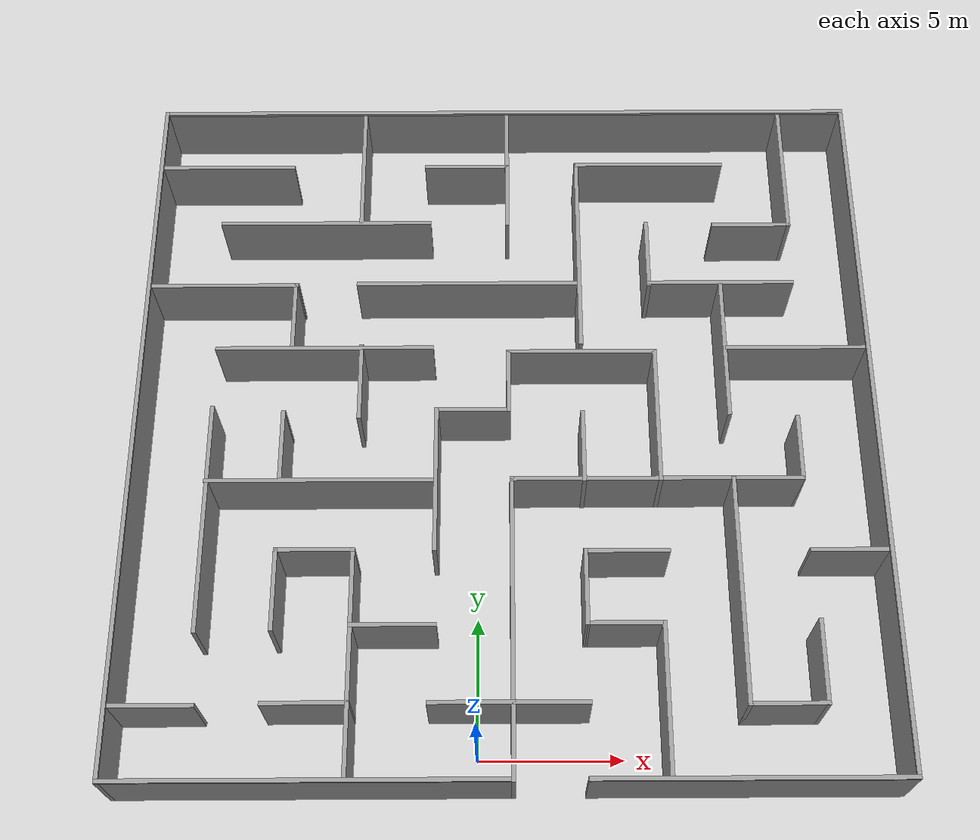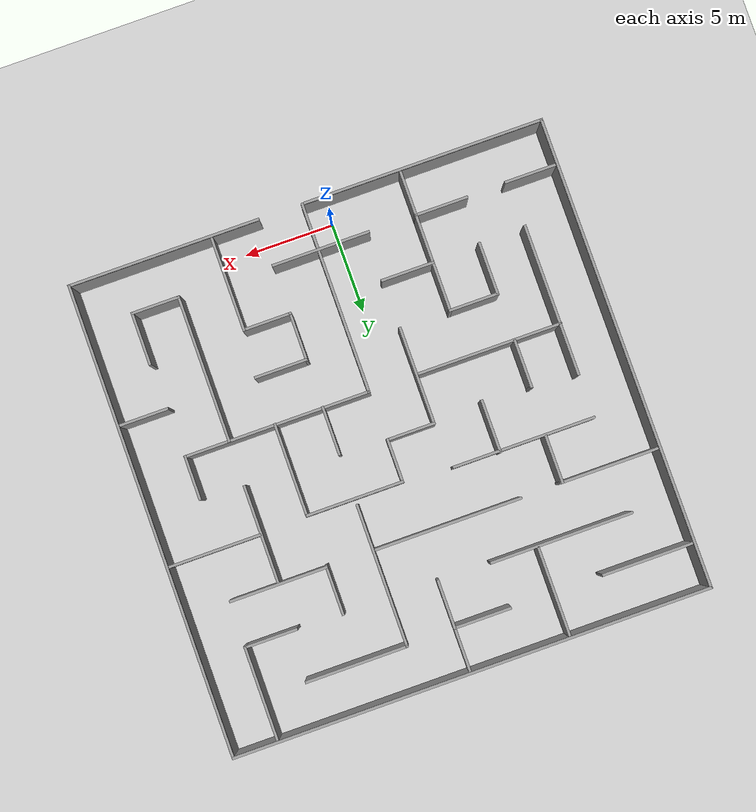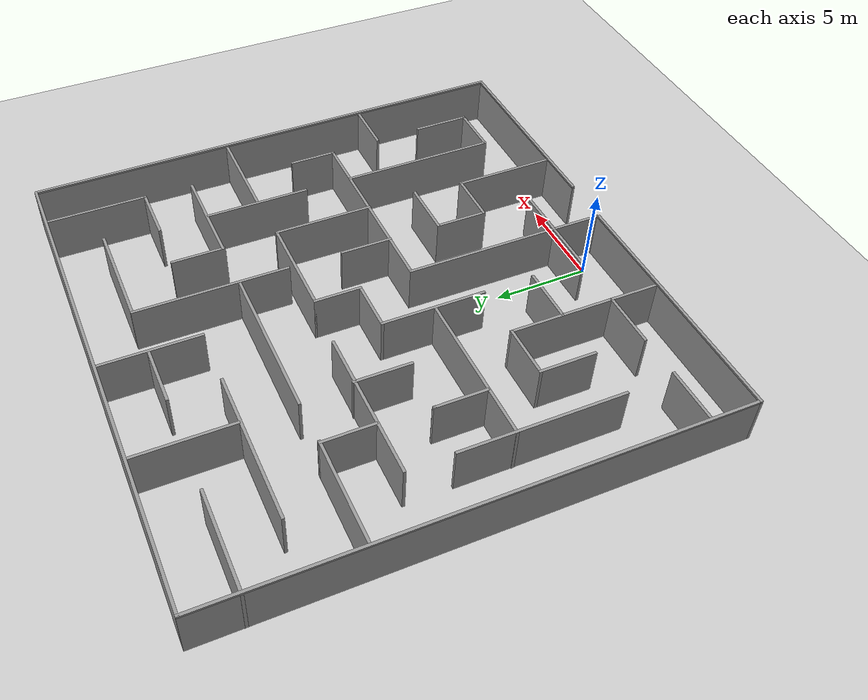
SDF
<?xml version="1.0" ?>
<sdf version="1.4">
  <world name="empty_world">
    <include>
      <uri>model://ground_plane</uri>
    </include>
    <include>
      <uri>model://sun</uri>
    </include>
    <include>
      <uri>model://maze</uri>
        <pose>1.0 12.0 0 0 0 0</pose>
    </include>

    <!-- Only require one ROS interface plugin per world, as any other plugin can connect a Gazebo
        topic to a ROS topic (or vise versa). 35.5 9-->
    <plugin name="ros_interface_plugin" filename="librotors_gazebo_ros_interface_plugin.so"></plugin>

    <spherical_coordinates>
      <surface_model>EARTH_WGS84</surface_model>
      <latitude_deg>47.3667</latitude_deg>
      <longitude_deg>8.5500</longitude_deg>
      <elevation>500.0</elevation>
      <heading_deg>0</heading_deg>
    </spherical_coordinates>
    <physics type='ode'>
      <ode>
        <solver>
          <type>quick</type>
          <iters>1000</iters>
          <sor>1.3</sor>
        </solver>
        <constraints>
          <cfm>0</cfm>
          <erp>0.2</erp>
          <contact_max_correcting_vel>100</contact_max_correcting_vel>
          <contact_surface_layer>0.001</contact_surface_layer>
        </constraints>
      </ode>
      <max_step_size>0.01</max_step_size>
      <real_time_factor>1</real_time_factor>
      <real_time_update_rate>100</real_time_update_rate>
      <gravity>0 0 -9.8</gravity>
    </physics>
  </world>
</sdf>

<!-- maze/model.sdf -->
<sdf version='1.6'>
  <model name='maze'>
    <pose frame=''>-0.052753 -0.039413 0 0 -0 0</pose>

    <link name='Wall_0'>
      <collision name='Wall_0_Collision'>
        <geometry>
          <box>
            <size>13.5 0.15 2.5</size>
          </box>
        </geometry>
        <pose frame=''>0 0 1.25 0 -0 0</pose>
      </collision>
      <visual name='Wall_0_Visual'>
        <pose frame=''>0 0 1.25 0 -0 0</pose>
        <geometry>
          <box>
            <size>13.5 0.15 2.5</size>
          </box>
        </geometry>
        <material>
          <script>
            <uri>file://media/materials/scripts/gazebo.material</uri>
            <name>Gazebo/Grey</name>
          </script>
          <ambient>1 1 1 1</ambient>
        </material>
        <meta>
          <layer>0</layer>
        </meta>
      </visual>
      <pose frame=''>-6.62044 -13.175 0 0 -0 3.14159</pose>
    </link>
    <link name='Wall_1'>
      <collision name='Wall_1_Collision'>
        <geometry>
          <box>
            <size>26.5 0.15 2.5</size>
          </box>
        </geometry>
        <pose frame=''>0 0 1.25 0 -0 0</pose>
      </collision>
      <visual name='Wall_1_Visual'>
        <pose frame=''>0 0 1.25 0 -0 0</pose>
        <geometry>
          <box>
            <size>26.5 0.15 2.5</size>
          </box>
        </geometry>
        <material>
          <script>
            <uri>file://media/materials/scripts/gazebo.material</uri>
            <name>Gazebo/Grey</name>
          </script>
          <ambient>1 1 1 1</ambient>
        </material>
        <meta>
          <layer>0</layer>
        </meta>
      </visual>
      <pose frame=''>-13.2954 0 0 0 -0 1.5708</pose>
    </link>
    <link name='Wall_10'>
      <collision name='Wall_10_Collision'>
        <geometry>
          <box>
            <size>10.75 0.15 0.1</size>
          </box>
        </geometry>
        <pose frame=''>0 0 0.05 0 -0 0</pose>
      </collision>
      <visual name='Wall_10_Visual'>
        <pose frame=''>0 0 0.05 0 -0 0</pose>
        <geometry>
          <box>
            <size>10.75 0.15 0.1</size>
          </box>
        </geometry>
        <material>
          <script>
            <uri>file://media/materials/scripts/gazebo.material</uri>
            <name>Gazebo/Grey</name>
          </script>
          <ambient>1 1 1 1</ambient>
        </material>
        <meta>
          <layer>1</layer>
        </meta>
      </visual>
      <pose frame=''>8.00475 -13.1746 2.5 0 -0 3.14159</pose>
    </link>
    <link name='Wall_11'>
      <collision name='Wall_11_Collision'>
        <geometry>
          <box>
            <size>5.43559 0.15 2.5</size>
          </box>
        </geometry>
        <pose frame=''>0 0 1.25 0 -0 0</pose>
      </collision>
      <visual name='Wall_11_Visual'>
        <pose frame=''>0 0 1.25 0 -0 0</pose>
        <geometry>
          <box>
            <size>5.43559 0.15 2.5</size>
          </box>
        </geometry>
        <material>
          <script>
            <uri>file://media/materials/scripts/gazebo.material</uri>
            <name>Gazebo/Grey</name>
          </script>
          <ambient>1 1 1 1</ambient>
        </material>
        <meta>
          <layer>0</layer>
        </meta>
      </visual>
      <pose frame=''>5.34675 -10.5316 0 0 -0 1.5708</pose>
    </link>
    <link name='Wall_12'>
      <collision name='Wall_12_Collision'>
        <geometry>
          <box>
            <size>2.75 0.15 2.5</size>
          </box>
        </geometry>
        <pose frame=''>0 0 1.25 0 -0 0</pose>
      </collision>
      <visual name='Wall_12_Visual'>
        <pose frame=''>0 0 1.25 0 -0 0</pose>
        <geometry>
          <box>
            <size>2.75 0.15 2.5</size>
          </box>
        </geometry>
        <material>
          <script>
            <uri>file://media/materials/scripts/gazebo.material</uri>
            <name>Gazebo/Grey</name>
          </script>
          <ambient>1 1 1 1</ambient>
        </material>
        <meta>
          <layer>0</layer>
        </meta>
      </visual>
      <pose frame=''>4.04654 -7.88879 0 0 -0 -3.14143</pose>
    </link>
    <link name='Wall_13'>
      <collision name='Wall_13_Collision'>
        <geometry>
          <box>
            <size>2.75 0.15 2.5</size>
          </box>
        </geometry>
        <pose frame=''>0 0 1.25 0 -0 0</pose>
      </collision>
      <visual name='Wall_13_Visual'>
        <pose frame=''>0 0 1.25 0 -0 0</pose>
        <geometry>
          <box>
            <size>2.75 0.15 2.5</size>
          </box>
        </geometry>
        <material>
          <script>
            <uri>file://media/materials/scripts/gazebo.material</uri>
            <name>Gazebo/Grey</name>
          </script>
          <ambient>1 1 1 1</ambient>
        </material>
        <meta>
          <layer>0</layer>
        </meta>
      </visual>
      <pose frame=''>2.74634 -6.589 0 0 -0 1.5708</pose>
    </link>
    <link name='Wall_14'>
      <collision name='Wall_14_Collision'>
        <geometry>
          <box>
            <size>3 0.15 2.5</size>
          </box>
        </geometry>
        <pose frame=''>0 0 1.25 0 -0 0</pose>
      </collision>
      <visual name='Wall_14_Visual'>
        <pose frame=''>0 0 1.25 0 -0 0</pose>
        <geometry>
          <box>
            <size>3 0.15 2.5</size>
          </box>
        </geometry>
        <material>
          <script>
            <uri>file://media/materials/scripts/gazebo.material</uri>
            <name>Gazebo/Grey</name>
          </script>
          <ambient>1 1 1 1</ambient>
        </material>
        <meta>
          <layer>0</layer>
        </meta>
      </visual>
      <pose frame=''>4.17134 -5.289 0 0 -0 0</pose>
    </link>
    <link name='Wall_16'>
      <collision name='Wall_16_Collision'>
        <geometry>
          <box>
            <size>10.752 0.15 2.5</size>
          </box>
        </geometry>
        <pose frame=''>0 0 1.25 0 -0 0</pose>
      </collision>
      <visual name='Wall_16_Visual'>
        <pose frame=''>0 0 1.25 0 -0 0</pose>
        <geometry>
          <box>
            <size>10.752 0.15 2.5</size>
          </box>
        </geometry>
        <material>
          <script>
            <uri>file://media/materials/scripts/gazebo.material</uri>
            <name>Gazebo/Grey</name>
          </script>
          <ambient>1 1 1 1</ambient>
        </material>
        <meta>
          <layer>0</layer>
        </meta>
      </visual>
      <pose frame=''>0.206753 -7.87359 0 0 -0 1.5708</pose>
    </link>
    <link name='Wall_17'>
      <collision name='Wall_17_Collision'>
        <geometry>
          <box>
            <size>10.4392 0.15 2.5</size>
          </box>
        </geometry>
        <pose frame=''>0 0 1.25 0 -0 0</pose>
      </collision>
      <visual name='Wall_17_Visual'>
        <pose frame=''>0 0 1.25 0 -0 0</pose>
        <geometry>
          <box>
            <size>10.4392 0.15 2.5</size>
          </box>
        </geometry>
        <material>
          <script>
            <uri>file://media/materials/scripts/gazebo.material</uri>
            <name>Gazebo/Grey</name>
          </script>
          <ambient>1 1 1 1</ambient>
        </material>
        <meta>
          <layer>0</layer>
        </meta>
      </visual>
      <pose frame=''>5.35137 -2.57256 0 0 -0 4e-06</pose>
    </link>
    <link name='Wall_18'>
      <collision name='Wall_18_Collision'>
        <geometry>
          <box>
            <size>2.5 0.15 2.5</size>
          </box>
        </geometry>
        <pose frame=''>0 0 1.25 0 -0 0</pose>
      </collision>
      <visual name='Wall_18_Visual'>
        <pose frame=''>0 0 1.25 0 -0 0</pose>
        <geometry>
          <box>
            <size>2.5 0.15 2.5</size>
          </box>
        </geometry>
        <material>
          <script>
            <uri>file://media/materials/scripts/gazebo.material</uri>
            <name>Gazebo/Grey</name>
          </script>
          <ambient>1 1 1 1</ambient>
        </material>
        <meta>
          <layer>0</layer>
        </meta>
      </visual>
      <pose frame=''>10.496 -1.39754 0 0 -0 1.5708</pose>
    </link>
    <link name='Wall_2'>
      <collision name='Wall_2_Collision'>
        <geometry>
          <box>
            <size>26.75 0.15 2.5</size>
          </box>
        </geometry>
        <pose frame=''>0 0 1.25 0 -0 0</pose>
      </collision>
      <visual name='Wall_2_Visual'>
        <pose frame=''>0 0 1.25 0 -0 0</pose>
        <geometry>
          <box>
            <size>26.75 0.15 2.5</size>
          </box>
        </geometry>
        <material>
          <script>
            <uri>file://media/materials/scripts/gazebo.material</uri>
            <name>Gazebo/Grey</name>
          </script>
          <ambient>1 1 1 1</ambient>
        </material>
        <meta>
          <layer>0</layer>
        </meta>
      </visual>
      <pose frame=''>0.00456 13.175 0 0 -0 0</pose>
    </link>
    <link name='Wall_20'>
      <collision name='Wall_20_Collision'>
        <geometry>
          <box>
            <size>8.06105 0.15 2.5</size>
          </box>
        </geometry>
        <pose frame=''>0 0 1.25 0 -0 0</pose>
      </collision>
      <visual name='Wall_20_Visual'>
        <pose frame=''>0 0 1.25 0 -0 0</pose>
        <geometry>
          <box>
            <size>8.06105 0.15 2.5</size>
          </box>
        </geometry>
        <material>
          <script>
            <uri>file://media/materials/scripts/gazebo.material</uri>
            <name>Gazebo/Grey</name>
          </script>
          <ambient>1 1 1 1</ambient>
        </material>
        <meta>
          <layer>0</layer>
        </meta>
      </visual>
      <pose frame=''>-5.29916 -9.16111 0 0 -0 1.57082</pose>
    </link>
    <link name='Wall_21'>
      <collision name='Wall_21_Collision'>
        <geometry>
          <box>
            <size>2.82244 0.15 2.5</size>
          </box>
        </geometry>
        <pose frame=''>0 0 1.25 0 -0 0</pose>
      </collision>
      <visual name='Wall_21_Visual'>
        <pose frame=''>0 0 1.25 0 -0 0</pose>
        <geometry>
          <box>
            <size>2.82244 0.15 2.5</size>
          </box>
        </geometry>
        <material>
          <script>
            <uri>file://media/materials/scripts/gazebo.material</uri>
            <name>Gazebo/Grey</name>
          </script>
          <ambient>1 1 1 1</ambient>
        </material>
        <meta>
          <layer>0</layer>
        </meta>
      </visual>
      <pose frame=''>-6.63525 -5.20559 0 0 -0 3.14159</pose>
    </link>
    <link name='Wall_22'>
      <collision name='Wall_22_Collision'>
        <geometry>
          <box>
            <size>3 0.15 2.5</size>
          </box>
        </geometry>
        <pose frame=''>0 0 1.25 0 -0 0</pose>
      </collision>
      <visual name='Wall_22_Visual'>
        <pose frame=''>0 0 1.25 0 -0 0</pose>
        <geometry>
          <box>
            <size>3 0.15 2.5</size>
          </box>
        </geometry>
        <material>
          <script>
            <uri>file://media/materials/scripts/gazebo.material</uri>
            <name>Gazebo/Grey</name>
          </script>
          <ambient>1 1 1 1</ambient>
        </material>
        <meta>
          <layer>0</layer>
        </meta>
      </visual>
      <pose frame=''>-7.97125 -6.63059 0 0 -0 -1.5708</pose>
    </link>
    <link name='Wall_24'>
      <collision name='Wall_24_Collision'>
        <geometry>
          <box>
            <size>5.5 0.15 2.5</size>
          </box>
        </geometry>
        <pose frame=''>0 0 1.25 0 -0 0</pose>
      </collision>
      <visual name='Wall_24_Visual'>
        <pose frame=''>0 0 1.25 0 -0 0</pose>
        <geometry>
          <box>
            <size>5.5 0.15 2.5</size>
          </box>
        </geometry>
        <material>
          <script>
            <uri>file://media/materials/scripts/gazebo.material</uri>
            <name>Gazebo/Grey</name>
          </script>
          <ambient>1 1 1 1</ambient>
        </material>
        <meta>
          <layer>0</layer>
        </meta>
      </visual>
      <pose frame=''>0.067875 -10.6082 0 0 -0 0</pose>
    </link>
    <link name='Wall_27'>
      <collision name='Wall_27_Collision'>
        <geometry>
          <box>
            <size>8.25 0.15 2.5</size>
          </box>
        </geometry>
        <pose frame=''>0 0 1.25 0 -0 0</pose>
      </collision>
      <visual name='Wall_27_Visual'>
        <pose frame=''>0 0 1.25 0 -0 0</pose>
        <geometry>
          <box>
            <size>8.25 0.15 2.5</size>
          </box>
        </geometry>
        <material>
          <script>
            <uri>file://media/materials/scripts/gazebo.material</uri>
            <name>Gazebo/Grey</name>
          </script>
          <ambient>1 1 1 1</ambient>
        </material>
        <meta>
          <layer>0</layer>
        </meta>
      </visual>
      <pose frame=''>8.03828 -6.6436 0 0 -0 -1.5708</pose>
    </link>
    <link name='Wall_28'>
      <collision name='Wall_28_Collision'>
        <geometry>
          <box>
            <size>2.75 0.15 2.5</size>
          </box>
        </geometry>
        <pose frame=''>0 0 1.25 0 -0 0</pose>
      </collision>
      <visual name='Wall_28_Visual'>
        <pose frame=''>0 0 1.25 0 -0 0</pose>
        <geometry>
          <box>
            <size>2.75 0.15 2.5</size>
          </box>
        </geometry>
        <material>
          <script>
            <uri>file://media/materials/scripts/gazebo.material</uri>
            <name>Gazebo/Grey</name>
          </script>
          <ambient>1 1 1 1</ambient>
        </material>
        <meta>
          <layer>0</layer>
        </meta>
      </visual>
      <pose frame=''>9.33827 -10.6936 0 0 -0 0</pose>
    </link>
    <link name='Wall_29'>
      <collision name='Wall_29_Collision'>
        <geometry>
          <box>
            <size>3 0.15 2.5</size>
          </box>
        </geometry>
        <pose frame=''>0 0 1.25 0 -0 0</pose>
      </collision>
      <visual name='Wall_29_Visual'>
        <pose frame=''>0 0 1.25 0 -0 0</pose>
        <geometry>
          <box>
            <size>3 0.15 2.5</size>
          </box>
        </geometry>
        <material>
          <script>
            <uri>file://media/materials/scripts/gazebo.material</uri>
            <name>Gazebo/Grey</name>
          </script>
          <ambient>1 1 1 1</ambient>
        </material>
        <meta>
          <layer>0</layer>
        </meta>
      </visual>
      <pose frame=''>10.6383 -9.2686 0 0 -0 1.5708</pose>
    </link>
    <link name='Wall_3'>
      <collision name='Wall_3_Collision'>
        <geometry>
          <box>
            <size>26.5 0.15 2.5</size>
          </box>
        </geometry>
        <pose frame=''>0 0 1.25 0 -0 0</pose>
      </collision>
      <visual name='Wall_3_Visual'>
        <pose frame=''>0 0 1.25 0 -0 0</pose>
        <geometry>
          <box>
            <size>26.5 0.15 2.5</size>
          </box>
        </geometry>
        <material>
          <script>
            <uri>file://media/materials/scripts/gazebo.material</uri>
            <name>Gazebo/Grey</name>
          </script>
          <ambient>1 1 1 1</ambient>
        </material>
        <meta>
          <layer>0</layer>
        </meta>
      </visual>
      <pose frame=''>13.3046 0 0 0 -0 -1.5708</pose>
    </link>
    <link name='Wall_31'>
      <collision name='Wall_31_Collision'>
        <geometry>
          <box>
            <size>2.8826 0.15 2.5</size>
          </box>
        </geometry>
        <pose frame=''>0 0 1.25 0 -0 0</pose>
      </collision>
      <visual name='Wall_31_Visual'>
        <pose frame=''>0 0 1.25 0 -0 0</pose>
        <geometry>
          <box>
            <size>2.8826 0.15 2.5</size>
          </box>
        </geometry>
        <material>
          <script>
            <uri>file://media/materials/scripts/gazebo.material</uri>
            <name>Gazebo/Grey</name>
          </script>
          <ambient>1 1 1 1</ambient>
        </material>
        <meta>
          <layer>0</layer>
        </meta>
      </visual>
      <pose frame=''>11.9383 -5.28559 0 0 -0 3.14159</pose>
    </link>
    <link name='Wall_33'>
      <collision name='Wall_33_Collision'>
        <geometry>
          <box>
            <size>3 0.15 2.5</size>
          </box>
        </geometry>
        <pose frame=''>0 0 1.25 0 -0 0</pose>
      </collision>
      <visual name='Wall_33_Visual'>
        <pose frame=''>0 0 1.25 0 -0 0</pose>
        <geometry>
          <box>
            <size>3 0.15 2.5</size>
          </box>
        </geometry>
        <material>
          <script>
            <uri>file://media/materials/scripts/gazebo.material</uri>
            <name>Gazebo/Grey</name>
          </script>
          <ambient>1 1 1 1</ambient>
        </material>
        <meta>
          <layer>0</layer>
        </meta>
      </visual>
      <pose frame=''>-11.8275 -10.6694 0 0 -0 0</pose>
    </link>
    <link name='Wall_35'>
      <collision name='Wall_35_Collision'>
        <geometry>
          <box>
            <size>3 0.15 2.5</size>
          </box>
        </geometry>
        <pose frame=''>0 0 1.25 0 -0 0</pose>
      </collision>
      <visual name='Wall_35_Visual'>
        <pose frame=''>0 0 1.25 0 -0 0</pose>
        <geometry>
          <box>
            <size>3 0.15 2.5</size>
          </box>
        </geometry>
        <material>
          <script>
            <uri>file://media/materials/scripts/gazebo.material</uri>
            <name>Gazebo/Grey</name>
          </script>
          <ambient>1 1 1 1</ambient>
        </material>
        <meta>
          <layer>0</layer>
        </meta>
      </visual>
      <pose frame=''>-6.72407 -10.6082 0 0 -0 3.14159</pose>
    </link>
    <link name='Wall_37'>
      <collision name='Wall_37_Collision'>
        <geometry>
          <box>
            <size>2.75 0.15 2.5</size>
          </box>
        </geometry>
        <pose frame=''>0 0 1.25 0 -0 0</pose>
      </collision>
      <visual name='Wall_37_Visual'>
        <pose frame=''>0 0 1.25 0 -0 0</pose>
        <geometry>
          <box>
            <size>2.75 0.15 2.5</size>
          </box>
        </geometry>
        <material>
          <script>
            <uri>file://media/materials/scripts/gazebo.material</uri>
            <name>Gazebo/Grey</name>
          </script>
          <ambient>1 1 1 1</ambient>
        </material>
        <meta>
          <layer>0</layer>
        </meta>
      </visual>
      <pose frame=''>2.77676 -1.2936 0 0 -0 1.5708</pose>
    </link>
    <link name='Wall_39'>
      <collision name='Wall_39_Collision'>
        <geometry>
          <box>
            <size>5.25 0.15 2.5</size>
          </box>
        </geometry>
        <pose frame=''>0 0 1.25 0 -0 0</pose>
      </collision>
      <visual name='Wall_39_Visual'>
        <pose frame=''>0 0 1.25 0 -0 0</pose>
        <geometry>
          <box>
            <size>5.25 0.15 2.5</size>
          </box>
        </geometry>
        <material>
          <script>
            <uri>file://media/materials/scripts/gazebo.material</uri>
            <name>Gazebo/Grey</name>
          </script>
          <ambient>1 1 1 1</ambient>
        </material>
        <meta>
          <layer>0</layer>
        </meta>
      </visual>
      <pose frame=''>5.4687 -0.043601 0 0 -0 1.5708</pose>
    </link>
    <link name='Wall_4'>
      <collision name='Wall_4_Collision'>
        <geometry>
          <box>
            <size>10.75 0.15 2.5</size>
          </box>
        </geometry>
        <pose frame=''>0 0 1.25 0 -0 0</pose>
      </collision>
      <visual name='Wall_4_Visual'>
        <pose frame=''>0 0 1.25 0 -0 0</pose>
        <geometry>
          <box>
            <size>10.75 0.15 2.5</size>
          </box>
        </geometry>
        <material>
          <script>
            <uri>file://media/materials/scripts/gazebo.material</uri>
            <name>Gazebo/Grey</name>
          </script>
          <ambient>1 1 1 1</ambient>
        </material>
        <meta>
          <layer>0</layer>
        </meta>
      </visual>
      <pose frame=''>8.00456 -13.175 0 0 -0 3.14159</pose>
    </link>
    <link name='Wall_40'>
      <collision name='Wall_40_Collision'>
        <geometry>
          <box>
            <size>5.5 0.15 2.5</size>
          </box>
        </geometry>
        <pose frame=''>0 0 1.25 0 -0 0</pose>
      </collision>
      <visual name='Wall_40_Visual'>
        <pose frame=''>0 0 1.25 0 -0 0</pose>
        <geometry>
          <box>
            <size>5.5 0.15 2.5</size>
          </box>
        </geometry>
        <material>
          <script>
            <uri>file://media/materials/scripts/gazebo.material</uri>
            <name>Gazebo/Grey</name>
          </script>
          <ambient>1 1 1 1</ambient>
        </material>
        <meta>
          <layer>0</layer>
        </meta>
      </visual>
      <pose frame=''>2.7937 2.5064 0 0 -0 3.14159</pose>
    </link>
    <link name='Wall_41'>
      <collision name='Wall_41_Collision'>
        <geometry>
          <box>
            <size>2.5 0.15 2.5</size>
          </box>
        </geometry>
        <pose frame=''>0 0 1.25 0 -0 0</pose>
      </collision>
      <visual name='Wall_41_Visual'>
        <pose frame=''>0 0 1.25 0 -0 0</pose>
        <geometry>
          <box>
            <size>2.5 0.15 2.5</size>
          </box>
        </geometry>
        <material>
          <script>
            <uri>file://media/materials/scripts/gazebo.material</uri>
            <name>Gazebo/Grey</name>
          </script>
          <ambient>1 1 1 1</ambient>
        </material>
        <meta>
          <layer>0</layer>
        </meta>
      </visual>
      <pose frame=''>0.118696 1.3314 0 0 -0 -1.5708</pose>
    </link>
    <link name='Wall_42'>
      <collision name='Wall_42_Collision'>
        <geometry>
          <box>
            <size>2.75 0.15 2.5</size>
          </box>
        </geometry>
        <pose frame=''>0 0 1.25 0 -0 0</pose>
      </collision>
      <visual name='Wall_42_Visual'>
        <pose frame=''>0 0 1.25 0 -0 0</pose>
        <geometry>
          <box>
            <size>2.75 0.15 2.5</size>
          </box>
        </geometry>
        <material>
          <script>
            <uri>file://media/materials/scripts/gazebo.material</uri>
            <name>Gazebo/Grey</name>
          </script>
          <ambient>1 1 1 1</ambient>
        </material>
        <meta>
          <layer>0</layer>
        </meta>
      </visual>
      <pose frame=''>-1.1813 0.156399 0 0 -0 3.14159</pose>
    </link>
    <link name='Wall_43'>
      <collision name='Wall_43_Collision'>
        <geometry>
          <box>
            <size>5.5 0.15 2.5</size>
          </box>
        </geometry>
        <pose frame=''>0 0 1.25 0 -0 0</pose>
      </collision>
      <visual name='Wall_43_Visual'>
        <pose frame=''>0 0 1.25 0 -0 0</pose>
        <geometry>
          <box>
            <size>5.5 0.15 2.5</size>
          </box>
        </geometry>
        <material>
          <script>
            <uri>file://media/materials/scripts/gazebo.material</uri>
            <name>Gazebo/Grey</name>
          </script>
          <ambient>1 1 1 1</ambient>
        </material>
        <meta>
          <layer>0</layer>
        </meta>
      </visual>
      <pose frame=''>-2.4813 -2.5186 0 0 -0 -1.5708</pose>
    </link>
    <link name='Wall_48'>
      <collision name='Wall_48_Collision'>
        <geometry>
          <box>
            <size>8.25 0.15 2.5</size>
          </box>
        </geometry>
        <pose frame=''>0 0 1.25 0 -0 0</pose>
      </collision>
      <visual name='Wall_48_Visual'>
        <pose frame=''>0 0 1.25 0 -0 0</pose>
        <geometry>
          <box>
            <size>8.25 0.15 2.5</size>
          </box>
        </geometry>
        <material>
          <script>
            <uri>file://media/materials/scripts/gazebo.material</uri>
            <name>Gazebo/Grey</name>
          </script>
          <ambient>1 1 1 1</ambient>
        </material>
        <meta>
          <layer>0</layer>
        </meta>
      </visual>
      <pose frame=''>-6.53476 -2.5936 0 0 -0 3.14159</pose>
    </link>
    <link name='Wall_50'>
      <collision name='Wall_50_Collision'>
        <geometry>
          <box>
            <size>8.5 0.15 2.5</size>
          </box>
        </geometry>
        <pose frame=''>0 0 1.25 0 -0 0</pose>
      </collision>
      <visual name='Wall_50_Visual'>
        <pose frame=''>0 0 1.25 0 -0 0</pose>
        <geometry>
          <box>
            <size>8.5 0.15 2.5</size>
          </box>
        </geometry>
        <material>
          <script>
            <uri>file://media/materials/scripts/gazebo.material</uri>
            <name>Gazebo/Grey</name>
          </script>
          <ambient>1 1 1 1</ambient>
        </material>
        <meta>
          <layer>0</layer>
        </meta>
      </visual>
      <pose frame=''>-10.5606 -3.92484 0 0 -0 1.5708</pose>
    </link>
    <link name='Wall_52'>
      <collision name='Wall_52_Collision'>
        <geometry>
          <box>
            <size>3 0.15 2.5</size>
          </box>
        </geometry>
        <pose frame=''>0 0 1.25 0 -0 0</pose>
      </collision>
      <visual name='Wall_52_Visual'>
        <pose frame=''>0 0 1.25 0 -0 0</pose>
        <geometry>
          <box>
            <size>3 0.15 2.5</size>
          </box>
        </geometry>
        <material>
          <script>
            <uri>file://media/materials/scripts/gazebo.material</uri>
            <name>Gazebo/Grey</name>
          </script>
          <ambient>1 1 1 1</ambient>
        </material>
        <meta>
          <layer>0</layer>
        </meta>
      </visual>
      <pose frame=''>-3.87406 -7.9163 0 0 -0 0</pose>
    </link>
    <link name='Wall_54'>
      <collision name='Wall_54_Collision'>
        <geometry>
          <box>
            <size>2.75 0.15 2.5</size>
          </box>
        </geometry>
        <pose frame=''>0 0 1.25 0 -0 0</pose>
      </collision>
      <visual name='Wall_54_Visual'>
        <pose frame=''>0 0 1.25 0 -0 0</pose>
        <geometry>
          <box>
            <size>2.75 0.15 2.5</size>
          </box>
        </geometry>
        <material>
          <script>
            <uri>file://media/materials/scripts/gazebo.material</uri>
            <name>Gazebo/Grey</name>
          </script>
          <ambient>1 1 1 1</ambient>
        </material>
        <meta>
          <layer>0</layer>
        </meta>
      </visual>
      <pose frame=''>-7.99101 -1.23242 0 0 -0 1.5708</pose>
    </link>
    <link name='Wall_55'>
      <collision name='Wall_55_Collision'>
        <geometry>
          <box>
            <size>0.16 0.15 2.5</size>
          </box>
        </geometry>
        <pose frame=''>0 0 1.25 0 -0 0</pose>
      </collision>
      <visual name='Wall_55_Visual'>
        <pose frame=''>0 0 1.25 0 -0 0</pose>
        <geometry>
          <box>
            <size>0.16 0.15 2.5</size>
          </box>
        </geometry>
        <material>
          <script>
            <uri>file://media/materials/scripts/gazebo.material</uri>
            <name>Gazebo/Grey</name>
          </script>
          <ambient>1 1 1 1</ambient>
        </material>
        <meta>
          <layer>0</layer>
        </meta>
      </visual>
      <pose frame=''>-7.986 0.067579 0 0 -0 0</pose>
    </link>
    <link name='Wall_57'>
      <collision name='Wall_57_Collision'>
        <geometry>
          <box>
            <size>5.60461 0.15 2.5</size>
          </box>
        </geometry>
        <pose frame=''>0 0 1.25 0 -0 0</pose>
      </collision>
      <visual name='Wall_57_Visual'>
        <pose frame=''>0 0 1.25 0 -0 0</pose>
        <geometry>
          <box>
            <size>5.60461 0.15 2.5</size>
          </box>
        </geometry>
        <material>
          <script>
            <uri>file://media/materials/scripts/gazebo.material</uri>
            <name>Gazebo/Grey</name>
          </script>
          <ambient>1 1 1 1</ambient>
        </material>
        <meta>
          <layer>0</layer>
        </meta>
      </visual>
      <pose frame=''>-10.4942 5.35463 0 0 -0 0</pose>
    </link>
    <link name='Wall_58'>
      <collision name='Wall_58_Collision'>
        <geometry>
          <box>
            <size>2.75 0.15 2.5</size>
          </box>
        </geometry>
        <pose frame=''>0 0 1.25 0 -0 0</pose>
      </collision>
      <visual name='Wall_58_Visual'>
        <pose frame=''>0 0 1.25 0 -0 0</pose>
        <geometry>
          <box>
            <size>2.75 0.15 2.5</size>
          </box>
        </geometry>
        <material>
          <script>
            <uri>file://media/materials/scripts/gazebo.material</uri>
            <name>Gazebo/Grey</name>
          </script>
          <ambient>1 1 1 1</ambient>
        </material>
        <meta>
          <layer>0</layer>
        </meta>
      </visual>
      <pose frame=''>-7.81923 4.05463 0 0 -0 -1.5708</pose>
    </link>
    <link name='Wall_6'>
      <collision name='Wall_6_Collision'>
        <geometry>
          <box>
            <size>13.5 0.15 0.1</size>
          </box>
        </geometry>
        <pose frame=''>0 0 0.05 0 -0 0</pose>
      </collision>
      <visual name='Wall_6_Visual'>
        <pose frame=''>0 0 0.05 0 -0 0</pose>
        <geometry>
          <box>
            <size>13.5 0.15 0.1</size>
          </box>
        </geometry>
        <material>
          <script>
            <uri>file://media/materials/scripts/gazebo.material</uri>
            <name>Gazebo/Grey</name>
          </script>
          <ambient>1 1 1 1</ambient>
        </material>
        <meta>
          <layer>1</layer>
        </meta>
      </visual>
      <pose frame=''>-6.62025 -13.1746 2.5 0 -0 3.14159</pose>
    </link>
    <link name='Wall_60'>
      <collision name='Wall_60_Collision'>
        <geometry>
          <box>
            <size>8 0.15 2.5</size>
          </box>
        </geometry>
        <pose frame=''>0 0 1.25 0 -0 0</pose>
      </collision>
      <visual name='Wall_60_Visual'>
        <pose frame=''>0 0 1.25 0 -0 0</pose>
        <geometry>
          <box>
            <size>8 0.15 2.5</size>
          </box>
        </geometry>
        <material>
          <script>
            <uri>file://media/materials/scripts/gazebo.material</uri>
            <name>Gazebo/Grey</name>
          </script>
          <ambient>1 1 1 1</ambient>
        </material>
        <meta>
          <layer>0</layer>
        </meta>
      </visual>
      <pose frame=''>-6.62901 2.68711 0 0 -0 0</pose>
    </link>
    <link name='Wall_62'>
      <collision name='Wall_62_Collision'>
        <geometry>
          <box>
            <size>3 0.15 2.5</size>
          </box>
        </geometry>
        <pose frame=''>0 0 1.25 0 -0 0</pose>
      </collision>
      <visual name='Wall_62_Visual'>
        <pose frame=''>0 0 1.25 0 -0 0</pose>
        <geometry>
          <box>
            <size>3 0.15 2.5</size>
          </box>
        </geometry>
        <material>
          <script>
            <uri>file://media/materials/scripts/gazebo.material</uri>
            <name>Gazebo/Grey</name>
          </script>
          <ambient>1 1 1 1</ambient>
        </material>
        <meta>
          <layer>0</layer>
        </meta>
      </visual>
      <pose frame=''>-5.27128 1.31441 0 0 -0 -1.5708</pose>
    </link>
    <link name='Wall_64'>
      <collision name='Wall_64_Collision'>
        <geometry>
          <box>
            <size>5.25 0.15 2.5</size>
          </box>
        </geometry>
        <pose frame=''>0 0 1.25 0 -0 0</pose>
      </collision>
      <visual name='Wall_64_Visual'>
        <pose frame=''>0 0 1.25 0 -0 0</pose>
        <geometry>
          <box>
            <size>5.25 0.15 2.5</size>
          </box>
        </geometry>
        <material>
          <script>
            <uri>file://media/materials/scripts/gazebo.material</uri>
            <name>Gazebo/Grey</name>
          </script>
          <ambient>1 1 1 1</ambient>
        </material>
        <meta>
          <layer>0</layer>
        </meta>
      </visual>
      <pose frame=''>10.706 2.6348 0 0 -0 3.14159</pose>
    </link>
    <link name='Wall_66'>
      <collision name='Wall_66_Collision'>
        <geometry>
          <box>
            <size>5.5 0.15 2.5</size>
          </box>
        </geometry>
        <pose frame=''>0 0 1.25 0 -0 0</pose>
      </collision>
      <visual name='Wall_66_Visual'>
        <pose frame=''>0 0 1.25 0 -0 0</pose>
        <geometry>
          <box>
            <size>5.5 0.15 2.5</size>
          </box>
        </geometry>
        <material>
          <script>
            <uri>file://media/materials/scripts/gazebo.material</uri>
            <name>Gazebo/Grey</name>
          </script>
          <ambient>1 1 1 1</ambient>
        </material>
        <meta>
          <layer>0</layer>
        </meta>
      </visual>
      <pose frame=''>8.06631 2.64228 0 0 -0 1.5708</pose>
    </link>
    <link name='Wall_68'>
      <collision name='Wall_68_Collision'>
        <geometry>
          <box>
            <size>2.81383 0.15 2.5</size>
          </box>
        </geometry>
        <pose frame=''>0 0 1.25 0 -0 0</pose>
      </collision>
      <visual name='Wall_68_Visual'>
        <pose frame=''>0 0 1.25 0 -0 0</pose>
        <geometry>
          <box>
            <size>2.81383 0.15 2.5</size>
          </box>
        </geometry>
        <material>
          <script>
            <uri>file://media/materials/scripts/gazebo.material</uri>
            <name>Gazebo/Grey</name>
          </script>
          <ambient>1 1 1 1</ambient>
        </material>
        <meta>
          <layer>0</layer>
        </meta>
      </visual>
      <pose frame=''>5.39879 6.69023 0 0 -0 -1.5708</pose>
    </link>
    <link name='Wall_69'>
      <collision name='Wall_69_Collision'>
        <geometry>
          <box>
            <size>5.5 0.15 2.5</size>
          </box>
        </geometry>
        <pose frame=''>0 0 1.25 0 -0 0</pose>
      </collision>
      <visual name='Wall_69_Visual'>
        <pose frame=''>0 0 1.25 0 -0 0</pose>
        <geometry>
          <box>
            <size>5.5 0.15 2.5</size>
          </box>
        </geometry>
        <material>
          <script>
            <uri>file://media/materials/scripts/gazebo.material</uri>
            <name>Gazebo/Grey</name>
          </script>
          <ambient>1 1 1 1</ambient>
        </material>
        <meta>
          <layer>0</layer>
        </meta>
      </visual>
      <pose frame=''>8.07379 5.41062 0 0 -0 0</pose>
    </link>
    <link name='Wall_7'>
      <collision name='Wall_7_Collision'>
        <geometry>
          <box>
            <size>26.5 0.15 0.1</size>
          </box>
        </geometry>
        <pose frame=''>0 0 0.05 0 -0 0</pose>
      </collision>
      <visual name='Wall_7_Visual'>
        <pose frame=''>0 0 0.05 0 -0 0</pose>
        <geometry>
          <box>
            <size>26.5 0.15 0.1</size>
          </box>
        </geometry>
        <material>
          <script>
            <uri>file://media/materials/scripts/gazebo.material</uri>
            <name>Gazebo/Grey</name>
          </script>
          <ambient>1 1 1 1</ambient>
        </material>
        <meta>
          <layer>1</layer>
        </meta>
      </visual>
      <pose frame=''>-13.2952 0.000413 2.5 0 -0 1.5708</pose>
    </link>
    <link name='Wall_71'>
      <collision name='Wall_71_Collision'>
        <geometry>
          <box>
            <size>3 0.15 2.5</size>
          </box>
        </geometry>
        <pose frame=''>0 0 1.25 0 -0 0</pose>
      </collision>
      <visual name='Wall_71_Visual'>
        <pose frame=''>0 0 1.25 0 -0 0</pose>
        <geometry>
          <box>
            <size>3 0.15 2.5</size>
          </box>
        </geometry>
        <material>
          <script>
            <uri>file://media/materials/scripts/gazebo.material</uri>
            <name>Gazebo/Grey</name>
          </script>
          <ambient>1 1 1 1</ambient>
        </material>
        <meta>
          <layer>0</layer>
        </meta>
      </visual>
      <pose frame=''>9.40555 7.95075 0 0 -0 0</pose>
    </link>
    <link name='Wall_72'>
      <collision name='Wall_72_Collision'>
        <geometry>
          <box>
            <size>5.25 0.15 2.5</size>
          </box>
        </geometry>
        <pose frame=''>0 0 1.25 0 -0 0</pose>
      </collision>
      <visual name='Wall_72_Visual'>
        <pose frame=''>0 0 1.25 0 -0 0</pose>
        <geometry>
          <box>
            <size>5.25 0.15 2.5</size>
          </box>
        </geometry>
        <material>
          <script>
            <uri>file://media/materials/scripts/gazebo.material</uri>
            <name>Gazebo/Grey</name>
          </script>
          <ambient>1 1 1 1</ambient>
        </material>
        <meta>
          <layer>0</layer>
        </meta>
      </visual>
      <pose frame=''>10.8306 10.5007 0 0 -0 1.5708</pose>
    </link>
    <link name='Wall_74'>
      <collision name='Wall_74_Collision'>
        <geometry>
          <box>
            <size>5 0.15 2.5</size>
          </box>
        </geometry>
        <pose frame=''>0 0 1.25 0 -0 0</pose>
      </collision>
      <visual name='Wall_74_Visual'>
        <pose frame=''>0 0 1.25 0 -0 0</pose>
        <geometry>
          <box>
            <size>5 0.15 2.5</size>
          </box>
        </geometry>
        <material>
          <script>
            <uri>file://media/materials/scripts/gazebo.material</uri>
            <name>Gazebo/Grey</name>
          </script>
          <ambient>1 1 1 1</ambient>
        </material>
        <meta>
          <layer>0</layer>
        </meta>
      </visual>
      <pose frame=''>-5.45681 10.6153 0 0 -0 -1.5708</pose>
    </link>
    <link name='Wall_76'>
      <collision name='Wall_76_Collision'>
        <geometry>
          <box>
            <size>5.25 0.15 2.5</size>
          </box>
        </geometry>
        <pose frame=''>0 0 1.25 0 -0 0</pose>
      </collision>
      <visual name='Wall_76_Visual'>
        <pose frame=''>0 0 1.25 0 -0 0</pose>
        <geometry>
          <box>
            <size>5.25 0.15 2.5</size>
          </box>
        </geometry>
        <material>
          <script>
            <uri>file://media/materials/scripts/gazebo.material</uri>
            <name>Gazebo/Grey</name>
          </script>
          <ambient>1 1 1 1</ambient>
        </material>
        <meta>
          <layer>0</layer>
        </meta>
      </visual>
      <pose frame=''>0.108404 10.6193 0 0 -0 -1.5708</pose>
    </link>
    <link name='Wall_78'>
      <collision name='Wall_78_Collision'>
        <geometry>
          <box>
            <size>5.25 0.15 2.5</size>
          </box>
        </geometry>
        <pose frame=''>0 0 1.25 0 -0 0</pose>
      </collision>
      <visual name='Wall_78_Visual'>
        <pose frame=''>0 0 1.25 0 -0 0</pose>
        <geometry>
          <box>
            <size>5.25 0.15 2.5</size>
          </box>
        </geometry>
        <material>
          <script>
            <uri>file://media/materials/scripts/gazebo.material</uri>
            <name>Gazebo/Grey</name>
          </script>
          <ambient>1 1 1 1</ambient>
        </material>
        <meta>
          <layer>0</layer>
        </meta>
      </visual>
      <pose frame=''>-10.7546 10.6686 0 0 -0 0</pose>
    </link>
    <link name='Wall_8'>
      <collision name='Wall_8_Collision'>
        <geometry>
          <box>
            <size>26.75 0.15 0.1</size>
          </box>
        </geometry>
        <pose frame=''>0 0 0.05 0 -0 0</pose>
      </collision>
      <visual name='Wall_8_Visual'>
        <pose frame=''>0 0 0.05 0 -0 0</pose>
        <geometry>
          <box>
            <size>26.75 0.15 0.1</size>
          </box>
        </geometry>
        <material>
          <script>
            <uri>file://media/materials/scripts/gazebo.material</uri>
            <name>Gazebo/Grey</name>
          </script>
          <ambient>1 1 1 1</ambient>
        </material>
        <meta>
          <layer>1</layer>
        </meta>
      </visual>
      <pose frame=''>0.004753 13.1754 2.5 0 -0 0</pose>
    </link>
    <link name='Wall_80'>
      <collision name='Wall_80_Collision'>
        <geometry>
          <box>
            <size>8 0.15 2.5</size>
          </box>
        </geometry>
        <pose frame=''>0 0 1.25 0 -0 0</pose>
      </collision>
      <visual name='Wall_80_Visual'>
        <pose frame=''>0 0 1.25 0 -0 0</pose>
        <geometry>
          <box>
            <size>8 0.15 2.5</size>
          </box>
        </geometry>
        <material>
          <script>
            <uri>file://media/materials/scripts/gazebo.material</uri>
            <name>Gazebo/Grey</name>
          </script>
          <ambient>1 1 1 1</ambient>
        </material>
        <meta>
          <layer>0</layer>
        </meta>
      </visual>
      <pose frame=''>2.79144 6.80863 0 0 -0 1.5708</pose>
    </link>
    <link name='Wall_81'>
      <collision name='Wall_81_Collision'>
        <geometry>
          <box>
            <size>5.75 0.15 2.5</size>
          </box>
        </geometry>
        <pose frame=''>0 0 1.25 0 -0 0</pose>
      </collision>
      <visual name='Wall_81_Visual'>
        <pose frame=''>0 0 1.25 0 -0 0</pose>
        <geometry>
          <box>
            <size>5.75 0.15 2.5</size>
          </box>
        </geometry>
        <material>
          <script>
            <uri>file://media/materials/scripts/gazebo.material</uri>
            <name>Gazebo/Grey</name>
          </script>
          <ambient>1 1 1 1</ambient>
        </material>
        <meta>
          <layer>0</layer>
        </meta>
      </visual>
      <pose frame=''>5.59144 10.7336 0 0 -0 0</pose>
    </link>
    <link name='Wall_83'>
      <collision name='Wall_83_Collision'>
        <geometry>
          <box>
            <size>8.25 0.15 2.5</size>
          </box>
        </geometry>
        <pose frame=''>0 0 1.25 0 -0 0</pose>
      </collision>
      <visual name='Wall_83_Visual'>
        <pose frame=''>0 0 1.25 0 -0 0</pose>
        <geometry>
          <box>
            <size>8.25 0.15 2.5</size>
          </box>
        </geometry>
        <material>
          <script>
            <uri>file://media/materials/scripts/gazebo.material</uri>
            <name>Gazebo/Grey</name>
          </script>
          <ambient>1 1 1 1</ambient>
        </material>
        <meta>
          <layer>0</layer>
        </meta>
      </visual>
      <pose frame=''>-1.41637 5.40849 0 0 -0 3.14159</pose>
    </link>
    <link name='Wall_85'>
      <collision name='Wall_85_Collision'>
        <geometry>
          <box>
            <size>8 0.15 2.5</size>
          </box>
        </geometry>
        <pose frame=''>0 0 1.25 0 -0 0</pose>
      </collision>
      <visual name='Wall_85_Visual'>
        <pose frame=''>0 0 1.25 0 -0 0</pose>
        <geometry>
          <box>
            <size>8 0.15 2.5</size>
          </box>
        </geometry>
        <material>
          <script>
            <uri>file://media/materials/scripts/gazebo.material</uri>
            <name>Gazebo/Grey</name>
          </script>
          <ambient>1 1 1 1</ambient>
        </material>
        <meta>
          <layer>0</layer>
        </meta>
      </visual>
      <pose frame=''>-6.8021 8.09116 0 0 -0 0</pose>
    </link>
    <link name='Wall_87'>
      <collision name='Wall_87_Collision'>
        <geometry>
          <box>
            <size>3.25 0.15 2.5</size>
          </box>
        </geometry>
        <pose frame=''>0 0 1.25 0 -0 0</pose>
      </collision>
      <visual name='Wall_87_Visual'>
        <pose frame=''>0 0 1.25 0 -0 0</pose>
        <geometry>
          <box>
            <size>3.25 0.15 2.5</size>
          </box>
        </geometry>
        <material>
          <script>
            <uri>file://media/materials/scripts/gazebo.material</uri>
            <name>Gazebo/Grey</name>
          </script>
          <ambient>1 1 1 1</ambient>
        </material>
        <meta>
          <layer>0</layer>
        </meta>
      </visual>
      <pose frame=''>-1.44123 10.6686 0 0 -0 3.14159</pose>
    </link>
    <link name='Wall_9'>
      <collision name='Wall_9_Collision'>
        <geometry>
          <box>
            <size>26.5 0.15 0.1</size>
          </box>
        </geometry>
        <pose frame=''>0 0 0.05 0 -0 0</pose>
      </collision>
      <visual name='Wall_9_Visual'>
        <pose frame=''>0 0 0.05 0 -0 0</pose>
        <geometry>
          <box>
            <size>26.5 0.15 0.1</size>
          </box>
        </geometry>
        <material>
          <script>
            <uri>file://media/materials/scripts/gazebo.material</uri>
            <name>Gazebo/Grey</name>
          </script>
          <ambient>1 1 1 1</ambient>
        </material>
        <meta>
          <layer>1</layer>
        </meta>
      </visual>
      <pose frame=''>13.3048 0.000413 2.5 0 -0 -1.5708</pose>
    </link>
    <static>1</static>
  </model>
</sdf>
